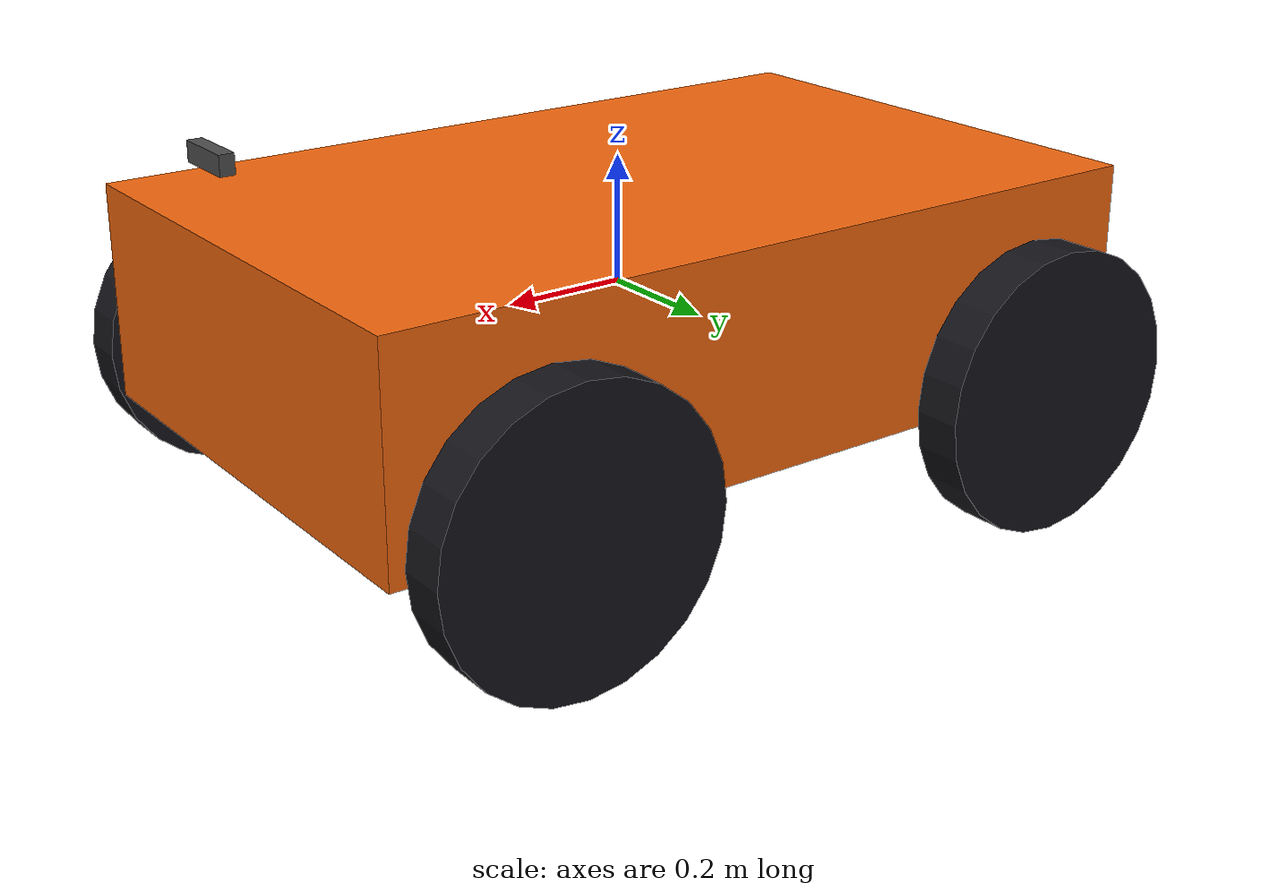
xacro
<?xml version='1.0' encoding='utf-8'?>
<robot xmlns:xacro="http://ros.org/wiki/xacro" name="lab_amphibious">
  <xacro:arg name="model_name" default="lab_amphibious" />
  <xacro:arg name="is_ignition" default="true" />
  <xacro:include filename="$(find robot_lab_robots)/description_common/urdf/oakd_camera.xacro" />
  <link name="base_link">
    <inertial>
      <origin xyz="0 0 -.12" rpy="0 0 0" />
      <mass value="50" />
      <inertia ixx="4.1" iyy="8.1" izz="10.2" ixy="0" ixz="0" iyz="0" />
    </inertial>
    <collision name="sealed_hull_collision">
      <geometry>
        <box size="1.3 .82 .34" />
      </geometry>
    </collision>
    <visual name="sealed_hull_visual">
      <geometry>
        <box size="1.3 .82 .34" />
      </geometry>
      <material name="hull_orange">
        <color rgba=".95 .4 .05 1" />
      </material>
    </visual>
  </link>
  <xacro:oakd name="oakd" parent_link="base_link" model="pro" mesh_visual="false" rate="5">
    <origin xyz=".66 0 .3" rpy="0 0 0" />
  </xacro:oakd>
  <gazebo reference="base_link">
    <sensor name="marine_imu" type="imu">
      <always_on>true</always_on>
      <update_rate>50</update_rate>
      <topic>/marine/imu</topic>
      <gz_frame_id>base_link</gz_frame_id>
    </sensor>
  </gazebo>
  <link name="front_left_carrier">
    <inertial>
      <mass value=".1" />
      <inertia ixx=".0001" iyy=".0001" izz=".0001" ixy="0" ixz="0" iyz="0" />
    </inertial>
  </link>
  <joint name="front_left_suspension_joint" type="prismatic">
    <parent link="base_link" />
    <child link="front_left_carrier" />
    <origin xyz="0.43 0.49 -.12" rpy="0 0 0" />
    <axis xyz="0 0 1" />
    <limit lower="-.04" upper=".04" effort="600" velocity=".3" />
  </joint>
  <link name="front_left_wheel">
    <inertial>
      <mass value="1" />
      <inertia ixx=".0126" iyy=".0242" izz=".0126" ixy="0" ixz="0" iyz="0" />
    </inertial>
    <collision name="front_left_wheel_collision">
      <origin xyz="0 0 0" rpy="1.5707963267948966 0 0" />
      <geometry>
        <cylinder radius=".22" length=".075" />
      </geometry>
    </collision>
    <visual name="front_left_wheel_visual">
      <origin xyz="0 0 0" rpy="1.5707963267948966 0 0" />
      <geometry>
        <cylinder radius=".22" length=".075" />
      </geometry>
      <material name="tire">
        <color rgba=".08 .08 .1 1" />
      </material>
    </visual>
  </link>
  <joint name="front_left_wheel_joint" type="continuous">
    <parent link="front_left_carrier" />
    <child link="front_left_wheel" />
    <origin xyz="0 0 0" rpy="0 0 0" />
    <axis xyz="0 1 0" />
    <limit effort="8" velocity="3" />
    <dynamics damping=".02" friction=".01" />
  </joint>
  <gazebo reference="front_left_wheel">
    <mu1>.9</mu1>
    <mu2>.9</mu2>
  </gazebo>
  <link name="rear_left_carrier">
    <inertial>
      <mass value=".1" />
      <inertia ixx=".0001" iyy=".0001" izz=".0001" ixy="0" ixz="0" iyz="0" />
    </inertial>
  </link>
  <joint name="rear_left_suspension_joint" type="prismatic">
    <parent link="base_link" />
    <child link="rear_left_carrier" />
    <origin xyz="-0.43 0.49 -.12" rpy="0 0 0" />
    <axis xyz="0 0 1" />
    <limit lower="-.04" upper=".04" effort="600" velocity=".3" />
  </joint>
  <link name="rear_left_wheel">
    <inertial>
      <mass value="1" />
      <inertia ixx=".0126" iyy=".0242" izz=".0126" ixy="0" ixz="0" iyz="0" />
    </inertial>
    <collision name="rear_left_wheel_collision">
      <origin xyz="0 0 0" rpy="1.5707963267948966 0 0" />
      <geometry>
        <cylinder radius=".22" length=".075" />
      </geometry>
    </collision>
    <visual name="rear_left_wheel_visual">
      <origin xyz="0 0 0" rpy="1.5707963267948966 0 0" />
      <geometry>
        <cylinder radius=".22" length=".075" />
      </geometry>
      <material name="tire">
        <color rgba=".08 .08 .1 1" />
      </material>
    </visual>
  </link>
  <joint name="rear_left_wheel_joint" type="continuous">
    <parent link="rear_left_carrier" />
    <child link="rear_left_wheel" />
    <origin xyz="0 0 0" rpy="0 0 0" />
    <axis xyz="0 1 0" />
    <limit effort="8" velocity="3" />
    <dynamics damping=".02" friction=".01" />
  </joint>
  <gazebo reference="rear_left_wheel">
    <mu1>.9</mu1>
    <mu2>.9</mu2>
  </gazebo>
  <link name="front_right_carrier">
    <inertial>
      <mass value=".1" />
      <inertia ixx=".0001" iyy=".0001" izz=".0001" ixy="0" ixz="0" iyz="0" />
    </inertial>
  </link>
  <joint name="front_right_suspension_joint" type="prismatic">
    <parent link="base_link" />
    <child link="front_right_carrier" />
    <origin xyz="0.43 -0.49 -.12" rpy="0 0 0" />
    <axis xyz="0 0 1" />
    <limit lower="-.04" upper=".04" effort="600" velocity=".3" />
  </joint>
  <link name="front_right_wheel">
    <inertial>
      <mass value="1" />
      <inertia ixx=".0126" iyy=".0242" izz=".0126" ixy="0" ixz="0" iyz="0" />
    </inertial>
    <collision name="front_right_wheel_collision">
      <origin xyz="0 0 0" rpy="1.5707963267948966 0 0" />
      <geometry>
        <cylinder radius=".22" length=".075" />
      </geometry>
    </collision>
    <visual name="front_right_wheel_visual">
      <origin xyz="0 0 0" rpy="1.5707963267948966 0 0" />
      <geometry>
        <cylinder radius=".22" length=".075" />
      </geometry>
      <material name="tire">
        <color rgba=".08 .08 .1 1" />
      </material>
    </visual>
  </link>
  <joint name="front_right_wheel_joint" type="continuous">
    <parent link="front_right_carrier" />
    <child link="front_right_wheel" />
    <origin xyz="0 0 0" rpy="0 0 0" />
    <axis xyz="0 1 0" />
    <limit effort="8" velocity="3" />
    <dynamics damping=".02" friction=".01" />
  </joint>
  <gazebo reference="front_right_wheel">
    <mu1>.9</mu1>
    <mu2>.9</mu2>
  </gazebo>
  <link name="rear_right_carrier">
    <inertial>
      <mass value=".1" />
      <inertia ixx=".0001" iyy=".0001" izz=".0001" ixy="0" ixz="0" iyz="0" />
    </inertial>
  </link>
  <joint name="rear_right_suspension_joint" type="prismatic">
    <parent link="base_link" />
    <child link="rear_right_carrier" />
    <origin xyz="-0.43 -0.49 -.12" rpy="0 0 0" />
    <axis xyz="0 0 1" />
    <limit lower="-.04" upper=".04" effort="600" velocity=".3" />
  </joint>
  <link name="rear_right_wheel">
    <inertial>
      <mass value="1" />
      <inertia ixx=".0126" iyy=".0242" izz=".0126" ixy="0" ixz="0" iyz="0" />
    </inertial>
    <collision name="rear_right_wheel_collision">
      <origin xyz="0 0 0" rpy="1.5707963267948966 0 0" />
      <geometry>
        <cylinder radius=".22" length=".075" />
      </geometry>
    </collision>
    <visual name="rear_right_wheel_visual">
      <origin xyz="0 0 0" rpy="1.5707963267948966 0 0" />
      <geometry>
        <cylinder radius=".22" length=".075" />
      </geometry>
      <material name="tire">
        <color rgba=".08 .08 .1 1" />
      </material>
    </visual>
  </link>
  <joint name="rear_right_wheel_joint" type="continuous">
    <parent link="rear_right_carrier" />
    <child link="rear_right_wheel" />
    <origin xyz="0 0 0" rpy="0 0 0" />
    <axis xyz="0 1 0" />
    <limit effort="8" velocity="3" />
    <dynamics damping=".02" friction=".01" />
  </joint>
  <gazebo reference="rear_right_wheel">
    <mu1>.9</mu1>
    <mu2>.9</mu2>
  </gazebo>
  <link name="port_propeller_link">
    <inertial>
      <mass value=".05" />
      <inertia ixx=".0001" iyy=".0001" izz=".0001" ixy="0" ixz="0" iyz="0" />
    </inertial>
    <visual>
      <origin xyz="0 0 0" rpy="0 1.57079632679 0" />
      <geometry>
        <cylinder radius=".065" length=".02" />
      </geometry>
    </visual>
  </link>
  <joint name="port_propeller_joint" type="continuous">
    <parent link="base_link" />
    <child link="port_propeller_link" />
    <origin xyz="-.64 0.38 -.15" rpy="0 0 0" />
    <axis xyz="1 0 0" />
    <limit effort="5" velocity="400" />
  </joint>
  <gazebo>
    <plugin filename="ignition-gazebo-thruster-system" name="ignition::gazebo::systems::Thruster">
      <namespace>$(arg model_name)</namespace>
      <joint_name>port_propeller_joint</joint_name>
      <thrust_coefficient>.0044</thrust_coefficient>
      <fluid_density>1025</fluid_density>
      <propeller_diameter>.13</propeller_diameter>
      <min_thrust_cmd>-35</min_thrust_cmd>
      <max_thrust_cmd>35</max_thrust_cmd>
      <velocity_control>true</velocity_control>
    </plugin>
  </gazebo>
  <link name="starboard_propeller_link">
    <inertial>
      <mass value=".05" />
      <inertia ixx=".0001" iyy=".0001" izz=".0001" ixy="0" ixz="0" iyz="0" />
    </inertial>
    <visual>
      <origin xyz="0 0 0" rpy="0 1.57079632679 0" />
      <geometry>
        <cylinder radius=".065" length=".02" />
      </geometry>
    </visual>
  </link>
  <joint name="starboard_propeller_joint" type="continuous">
    <parent link="base_link" />
    <child link="starboard_propeller_link" />
    <origin xyz="-.64 -0.38 -.15" rpy="0 0 0" />
    <axis xyz="1 0 0" />
    <limit effort="5" velocity="400" />
  </joint>
  <gazebo>
    <plugin filename="ignition-gazebo-thruster-system" name="ignition::gazebo::systems::Thruster">
      <namespace>$(arg model_name)</namespace>
      <joint_name>starboard_propeller_joint</joint_name>
      <thrust_coefficient>.0044</thrust_coefficient>
      <fluid_density>1025</fluid_density>
      <propeller_diameter>.13</propeller_diameter>
      <min_thrust_cmd>-35</min_thrust_cmd>
      <max_thrust_cmd>35</max_thrust_cmd>
      <velocity_control>true</velocity_control>
    </plugin>
  </gazebo>
  <gazebo>
    <plugin filename="ignition-gazebo-odometry-publisher-system" name="ignition::gazebo::systems::OdometryPublisher">
      <odom_frame>map</odom_frame>
      <robot_base_frame>base_link</robot_base_frame>
      <odom_topic>/marine/odometry</odom_topic>
      <odom_publish_frequency>50</odom_publish_frequency>
      <dimensions>3</dimensions>
    </plugin>
  </gazebo>
  <gazebo>
    <plugin filename="ignition-gazebo-joint-state-publisher-system" name="ignition::gazebo::systems::JointStatePublisher">
      <topic>/marine/joint_states</topic>
    </plugin>
  </gazebo>
</robot>

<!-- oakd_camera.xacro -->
<robot xmlns:xacro="http://ros.org/wiki/xacro">

  <xacro:macro name="dummy_inertial">
    <inertial>
      <mass value="0.0001"/>
      <inertia ixx="0.000001" ixy="0.0" ixz="0.0"
               iyy="0.000001" iyz="0.0" izz="0.000001"/>
    </inertial>
  </xacro:macro>

  <!-- Reusable OAK-D Pro / RGBD camera macro -->
  <xacro:macro name="oakd" params="name:=oakd parent_link *origin model:=pro mesh_visual:=true rate:=30">
    <xacro:property name="baseline" value="0.075"/>
    <xacro:property name="oakd_pi" value="3.1415926535897931"/>
    <xacro:property name="base_frame" value="${name}_link"/>

    <joint name="${name}_joint" type="fixed">
      <parent link="${parent_link}"/>
      <child link="${base_frame}"/>
      <xacro:insert_block name="origin"/>
    </joint>

    <link name="${base_frame}">
      <visual>
        <geometry>
          <xacro:if value="${mesh_visual}">
            <mesh filename="package://robot_lab_robots/description_common/meshes/oakd_${model}.stl" scale="1 1 1"/>
          </xacro:if>
          <xacro:unless value="${mesh_visual}">
            <box size="0.0225 0.097 0.03"/>
          </xacro:unless>
        </geometry>
        <material name="dark_grey"/>
      </visual>
      <collision>
        <origin xyz="-0.011 0 -0.005" rpy="0 0 0"/>
        <geometry>
          <box size="0.0225 0.097 0.03"/>
        </geometry>
      </collision>
      <inertial>
        <mass value="0.061"/>
        <inertia ixx="0.00000202475" ixy="0.0" ixz="0.0"
                 iyy="0.00001527320" iyz="0.0" izz="0.00001605536"/>
      </inertial>
    </link>

    <link name="${name}_rgb_camera_frame">
      <xacro:dummy_inertial/>
    </link>

    <joint name="${name}_rgb_camera_joint" type="fixed">
      <parent link="${base_frame}"/>
      <child link="${name}_rgb_camera_frame"/>
      <origin xyz="0 0 0" rpy="0 0 0"/>
    </joint>

    <link name="${name}_rgb_camera_optical_frame">
      <xacro:dummy_inertial/>
    </link>

    <joint name="${name}_rgb_camera_optical_joint" type="fixed">
      <parent link="${name}_rgb_camera_frame"/>
      <child link="${name}_rgb_camera_optical_frame"/>
      <origin xyz="0 0 0" rpy="${-oakd_pi/2} 0 ${-oakd_pi/2}"/>
    </joint>

    <link name="${name}_left_camera_frame">
      <xacro:dummy_inertial/>
    </link>

    <joint name="${name}_left_camera_joint" type="fixed">
      <parent link="${base_frame}"/>
      <child link="${name}_left_camera_frame"/>
      <origin xyz="0 ${baseline/2} 0" rpy="0 0 0"/>
    </joint>

    <link name="${name}_left_camera_optical_frame">
      <xacro:dummy_inertial/>
    </link>

    <joint name="${name}_left_camera_optical_joint" type="fixed">
      <parent link="${name}_left_camera_frame"/>
      <child link="${name}_left_camera_optical_frame"/>
      <origin xyz="0 0 0" rpy="${-oakd_pi/2} 0 ${-oakd_pi/2}"/>
    </joint>

    <link name="${name}_right_camera_frame">
      <xacro:dummy_inertial/>
    </link>

    <joint name="${name}_right_camera_joint" type="fixed">
      <parent link="${base_frame}"/>
      <child link="${name}_right_camera_frame"/>
      <origin xyz="0 ${-baseline/2} 0" rpy="0 0 0"/>
    </joint>

    <link name="${name}_right_camera_optical_frame">
      <xacro:dummy_inertial/>
    </link>

    <joint name="${name}_right_camera_optical_joint" type="fixed">
      <parent link="${name}_right_camera_frame"/>
      <child link="${name}_right_camera_optical_frame"/>
      <origin xyz="0 0 0" rpy="${-oakd_pi/2} 0 ${-oakd_pi/2}"/>
    </joint>

    <link name="${name}_imu_frame">
      <xacro:dummy_inertial/>
    </link>

    <joint name="${name}_imu_joint" type="fixed">
      <parent link="${base_frame}"/>
      <child link="${name}_imu_frame"/>
      <origin xyz="0 0 0" rpy="${-oakd_pi/2} 0 ${-oakd_pi/2}"/>
    </joint>

    <gazebo reference="${name}_rgb_camera_frame">
      <sensor name="rgbd_camera" type="rgbd_camera">
        <always_on>1</always_on>
        <update_rate>${rate}</update_rate>
        <visualize>true</visualize>
        <camera>
          <horizontal_fov>1.25</horizontal_fov>
          <image>
            <width>320</width>
            <height>240</height>
          </image>
          <clip>
            <near>0.3</near>
            <far>100</far>
          </clip>
          <optical_frame_id>${name}_rgb_camera_optical_frame</optical_frame_id>
        </camera>
      </sensor>
      <material>Gazebo/DarkGrey</material>
    </gazebo>

    <gazebo reference="${name}_joint">
      <preserveFixedJoint>true</preserveFixedJoint>
    </gazebo>
    <gazebo reference="${name}_rgb_camera_joint">
      <preserveFixedJoint>true</preserveFixedJoint>
    </gazebo>
    <gazebo reference="${name}_rgb_camera_optical_joint">
      <preserveFixedJoint>true</preserveFixedJoint>
    </gazebo>
    <gazebo reference="${name}_left_camera_joint">
      <preserveFixedJoint>true</preserveFixedJoint>
    </gazebo>
    <gazebo reference="${name}_left_camera_optical_joint">
      <preserveFixedJoint>true</preserveFixedJoint>
    </gazebo>
    <gazebo reference="${name}_right_camera_joint">
      <preserveFixedJoint>true</preserveFixedJoint>
    </gazebo>
    <gazebo reference="${name}_right_camera_optical_joint">
      <preserveFixedJoint>true</preserveFixedJoint>
    </gazebo>
    <gazebo reference="${name}_imu_joint">
      <preserveFixedJoint>true</preserveFixedJoint>
    </gazebo>
  </xacro:macro>

</robot>
